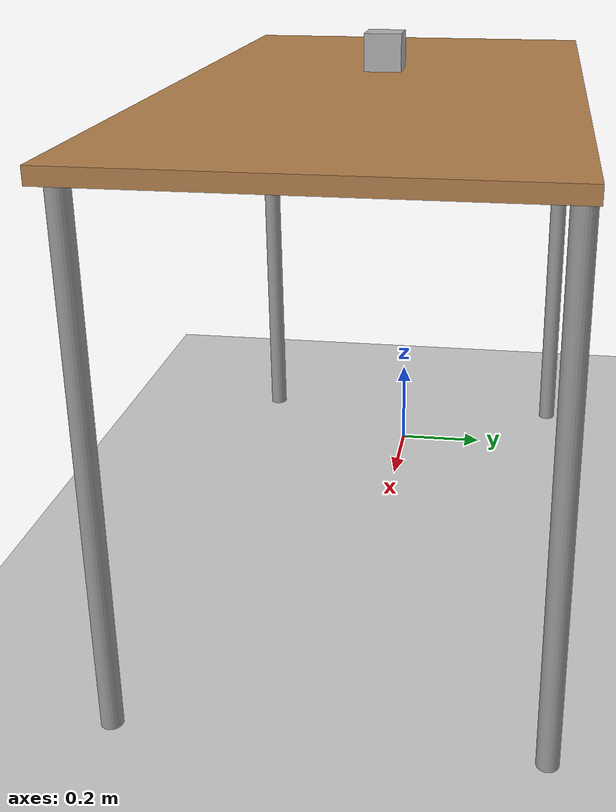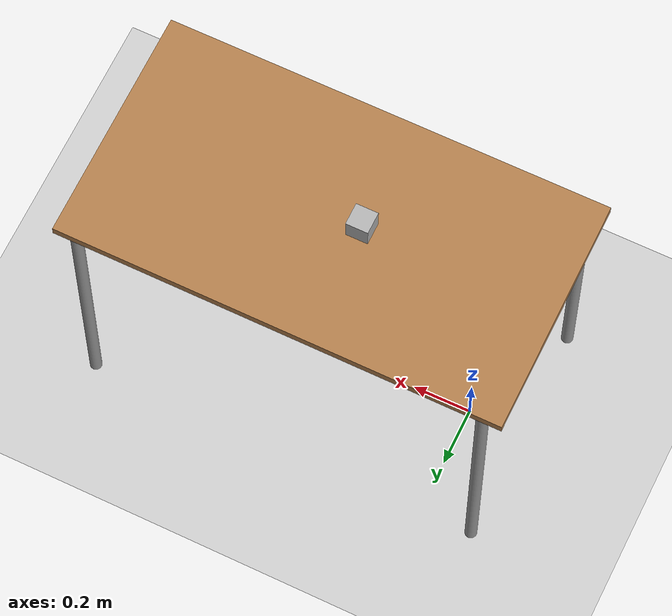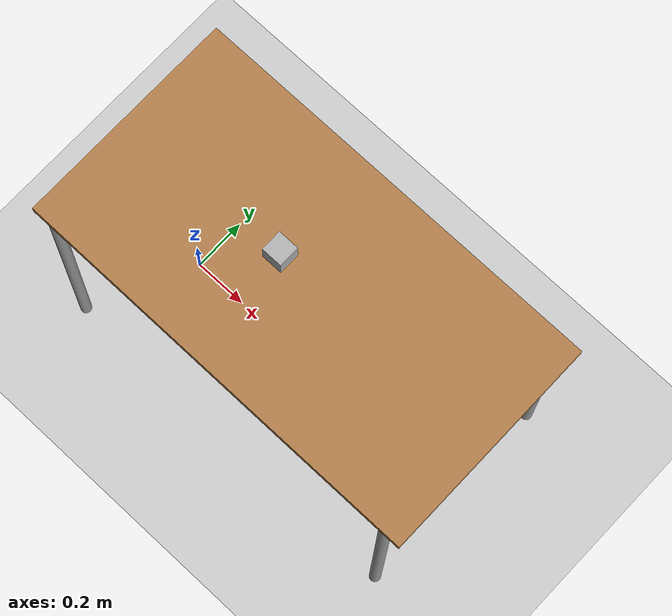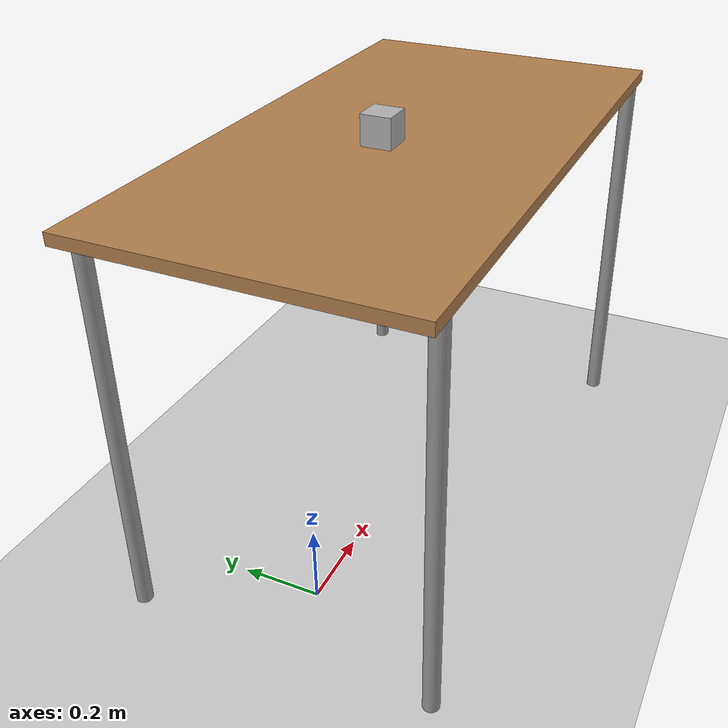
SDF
<?xml version="1.0" ?>
<sdf version="1.6">
  <world name="default">

    <include>
      <uri>model://ground_plane</uri>
    </include>

    <include>
      <uri>model://sun</uri>
    </include>

    <include>
      <uri>model://big_table</uri>
      <name>table</name>
      <pose>0.5 0 0 0 0 0</pose>
    </include>

    <!-- Push coke -->

    <!-- Point coke -->

    <include>
      <name>cube_large_blue</name>
      <uri>model://cube_large_blue</uri>
      <pose>0.4 -0.0 1.03 0 0 0</pose>
    </include>

    <physics type="ode">
      <real_time_update_rate>1000.0</real_time_update_rate>
    </physics>

    <gravity>
      0.0 0.0 -9.81
    </gravity>

    <gui fullscreen='0'>
    </gui>

  </world>
</sdf>

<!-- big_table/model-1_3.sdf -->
<sdf version="1.3">
  <model name="big_table">
    <static>true</static>
    <link name="link">
      <collision name="surface">
        <pose>0 0 1.0 0 0 0</pose>
        <geometry>
          <box>
            <size>1.5 0.8 0.03</size>
          </box>
        </geometry>
        <surface>
          <friction>
            <ode>
              <mu>0.6</mu>
              <mu2>0.6</mu2>
            </ode>
          </friction>
        </surface>
      </collision>
      <visual name="visual1">
        <pose>0 0 1.0 0 0 0</pose>
        <geometry>
          <box>
            <size>1.5 0.8 0.03</size>
          </box>
        </geometry>
        <material>
          <script>
            <uri>file://media/materials/scripts/gazebo.material</uri>
            <name>Gazebo/Wood</name>
          </script>
        </material>
      </visual>
      <collision name="front_left_leg">
        <pose>0.68 0.38 0.5 0 0 0</pose>
        <geometry>
          <cylinder>
            <radius>0.02</radius>
            <length>1.0</length>
          </cylinder>
        </geometry>
      </collision>
      <visual name="front_left_leg">
        <pose>0.68 0.38 0.5 0 0 0</pose>
        <geometry>
          <cylinder>
            <radius>0.02</radius>
            <length>1.0</length>
          </cylinder>
        </geometry>
        <material>
          <script>
            <uri>file://media/materials/scripts/gazebo.material</uri>
            <name>Gazebo/Grey</name>
          </script>
        </material>
      </visual>
      <collision name="front_right_leg">
        <pose>0.68 -0.38 0.5 0 0 0</pose>
        <geometry>
          <cylinder>
            <radius>0.02</radius>
            <length>1.0</length>
          </cylinder>
        </geometry>
      </collision>
      <visual name="front_right_leg">
        <pose>0.68 -0.38 0.5 0 0 0</pose>
        <geometry>
          <cylinder>
            <radius>0.02</radius>
            <length>1.0</length>
          </cylinder>
        </geometry>
        <material>
          <script>
            <uri>file://media/materials/scripts/gazebo.material</uri>
            <name>Gazebo/Grey</name>
          </script>
        </material>
      </visual>
      <collision name="back_right_leg">
        <pose>-0.68 -0.38 0.5 0 0 0</pose>
        <geometry>
          <cylinder>
            <radius>0.02</radius>
            <length>1.0</length>
          </cylinder>
        </geometry>
      </collision>
      <visual name="back_right_leg">
        <pose>-0.68 -0.38 0.5 0 0 0</pose>
        <geometry>
          <cylinder>
            <radius>0.02</radius>
            <length>1.0</length>
          </cylinder>
        </geometry>
        <material>
          <script>
            <uri>file://media/materials/scripts/gazebo.material</uri>
            <name>Gazebo/Grey</name>
          </script>
        </material>
      </visual>
      <collision name="back_left_leg">
        <pose>-0.68 0.38 0.5 0 0 0</pose>
        <geometry>
          <cylinder>
            <radius>0.02</radius>
            <length>1.0</length>
          </cylinder>
        </geometry>
      </collision>
      <visual name="back_left_leg">
        <pose>-0.68 0.38 0.5 0 0 0</pose>
        <geometry>
          <cylinder>
            <radius>0.02</radius>
            <length>1.0</length>
          </cylinder>
        </geometry>
        <material>
          <script>
            <uri>file://media/materials/scripts/gazebo.material</uri>
            <name>Gazebo/Grey</name>
          </script>
        </material>
      </visual>
    </link>
  </model>
</sdf>

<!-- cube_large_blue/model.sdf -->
<sdf version="1.5">
  <model name="cube_7_5cm">
    <link name="link">
      <pose>0 0 0.0375 0 0 0</pose>
      <inertial>
        <mass>0.2249</mass>
        <inertia>
          <ixx>0.00021084374999999999</ixx>
          <ixy>0</ixy>
          <ixz>0</ixz>
          <iyy>0.00021084374999999999</iyy>
          <iyz>0</iyz>
          <izz>0.00021084374999999999</izz>
        </inertia>
      </inertial>

      <collision name="collision">
        <geometry>
          <box>
            <size>0.075 0.075 0.075</size>
          </box>
        </geometry>
        <surface>
          <contact>
            <!-- Red Pine coefficients for longitudinal axis of the wood
                 according to:
                 http://www.fpl.fs.fed.us/documnts/fplgtr/fplgtr113/ch04.pdf -->
            <poissons_ratio>0.347</poissons_ratio>
            <elastic_modulus>8.8e+09</elastic_modulus>
            <ode>
              <kp>100000</kp>
              <kd>100</kd>
              <max_vel>100.0</max_vel>
              <min_depth>0.001</min_depth>
            </ode>
          </contact>
          <friction>
            <torsional>
              <coefficient>1.0</coefficient>
              <use_patch_radius>0</use_patch_radius>
              <surface_radius>0.01</surface_radius>
            </torsional>
          </friction>
        </surface>
      </collision>

      <visual name="visual">
        <geometry>
          <box>
            <size>0.075 0.075 0.075</size>
          </box>
        </geometry>

        <material>
          <!-- Wheel material -->
          <ambient>0 0 1 1</ambient>
          <diffuse>0.7 0.7 0.7 1</diffuse>
          <specular>0.01 0.01 0.01 1</specular>
          <emissive>0 0 0 1</emissive>
        </material> <!-- End wheel material -->

      </visual>

    </link>
  </model>
</sdf>
